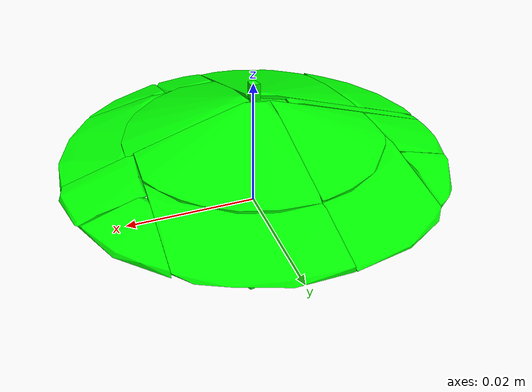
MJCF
<mujoco model="shapenetsem39">
  <asset>
    <mesh file="meshes/shapenetsem39/shapenetsem39_0.stl" name="shapenetsem39_0" scale="1 1 1"/>
    <mesh file="meshes/shapenetsem39/shapenetsem39_1.stl" name="shapenetsem39_1" scale="1 1 1"/>
    <mesh file="meshes/shapenetsem39/shapenetsem39_2.stl" name="shapenetsem39_2" scale="1 1 1"/>
    <mesh file="meshes/shapenetsem39/shapenetsem39_3.stl" name="shapenetsem39_3" scale="1 1 1"/>
    <mesh file="meshes/shapenetsem39/shapenetsem39_4.stl" name="shapenetsem39_4" scale="1 1 1"/>
    <mesh file="meshes/shapenetsem39/shapenetsem39_5.stl" name="shapenetsem39_5" scale="1 1 1"/>
    <mesh file="meshes/shapenetsem39/shapenetsem39_6.stl" name="shapenetsem39_6" scale="1 1 1"/>
    <mesh file="meshes/shapenetsem39/shapenetsem39_7.stl" name="shapenetsem39_7" scale="1 1 1"/>
    <mesh file="meshes/shapenetsem39/shapenetsem39_8.stl" name="shapenetsem39_8" scale="1 1 1"/>
    <mesh file="meshes/shapenetsem39/shapenetsem39_9.stl" name="shapenetsem39_9" scale="1 1 1"/>
    <mesh file="meshes/shapenetsem39/shapenetsem39_10.stl" name="shapenetsem39_10" scale="1 1 1"/>
    <mesh file="meshes/shapenetsem39/shapenetsem39_11.stl" name="shapenetsem39_11" scale="1 1 1"/>
    <mesh file="meshes/shapenetsem39/shapenetsem39_12.stl" name="shapenetsem39_12" scale="1 1 1"/>
    <mesh file="meshes/shapenetsem39/shapenetsem39_13.stl" name="shapenetsem39_13" scale="1 1 1"/>
    <mesh file="meshes/shapenetsem39/shapenetsem39_14.stl" name="shapenetsem39_14" scale="1 1 1"/>
    <mesh file="meshes/shapenetsem39/shapenetsem39_15.stl" name="shapenetsem39_15" scale="1 1 1"/>
    <mesh file="meshes/shapenetsem39/shapenetsem39_16.stl" name="shapenetsem39_16" scale="1 1 1"/>
    <mesh file="meshes/shapenetsem39/shapenetsem39_17.stl" name="shapenetsem39_17" scale="1 1 1"/>
    <mesh file="meshes/shapenetsem39/shapenetsem39_18.stl" name="shapenetsem39_18" scale="1 1 1"/>
  </asset>
  <worldbody>
    <body>
      <body name="collision">
        <geom pos="0 0 0" mesh="shapenetsem39_0" type="mesh" solimp="0.998 0.998 0.001" solref="0.001 1" density="100" friction="0.95 0.3 0.1" rgba="0 1 0 1" group="1" condim="4"/>
        <geom pos="0 0 0" mesh="shapenetsem39_1" type="mesh" solimp="0.998 0.998 0.001" solref="0.001 1" density="100" friction="0.95 0.3 0.1" rgba="0 1 0 1" group="1" condim="4"/>
        <geom pos="0 0 0" mesh="shapenetsem39_2" type="mesh" solimp="0.998 0.998 0.001" solref="0.001 1" density="100" friction="0.95 0.3 0.1" rgba="0 1 0 1" group="1" condim="4"/>
        <geom pos="0 0 0" mesh="shapenetsem39_3" type="mesh" solimp="0.998 0.998 0.001" solref="0.001 1" density="100" friction="0.95 0.3 0.1" rgba="0 1 0 1" group="1" condim="4"/>
        <geom pos="0 0 0" mesh="shapenetsem39_4" type="mesh" solimp="0.998 0.998 0.001" solref="0.001 1" density="100" friction="0.95 0.3 0.1" rgba="0 1 0 1" group="1" condim="4"/>
        <geom pos="0 0 0" mesh="shapenetsem39_5" type="mesh" solimp="0.998 0.998 0.001" solref="0.001 1" density="100" friction="0.95 0.3 0.1" rgba="0 1 0 1" group="1" condim="4"/>
        <geom pos="0 0 0" mesh="shapenetsem39_6" type="mesh" solimp="0.998 0.998 0.001" solref="0.001 1" density="100" friction="0.95 0.3 0.1" rgba="0 1 0 1" group="1" condim="4"/>
        <geom pos="0 0 0" mesh="shapenetsem39_7" type="mesh" solimp="0.998 0.998 0.001" solref="0.001 1" density="100" friction="0.95 0.3 0.1" rgba="0 1 0 1" group="1" condim="4"/>
        <geom pos="0 0 0" mesh="shapenetsem39_8" type="mesh" solimp="0.998 0.998 0.001" solref="0.001 1" density="100" friction="0.95 0.3 0.1" rgba="0 1 0 1" group="1" condim="4"/>
        <geom pos="0 0 0" mesh="shapenetsem39_9" type="mesh" solimp="0.998 0.998 0.001" solref="0.001 1" density="100" friction="0.95 0.3 0.1" rgba="0 1 0 1" group="1" condim="4"/>
        <geom pos="0 0 0" mesh="shapenetsem39_10" type="mesh" solimp="0.998 0.998 0.001" solref="0.001 1" density="100" friction="0.95 0.3 0.1" rgba="0 1 0 1" group="1" condim="4"/>
        <geom pos="0 0 0" mesh="shapenetsem39_11" type="mesh" solimp="0.998 0.998 0.001" solref="0.001 1" density="100" friction="0.95 0.3 0.1" rgba="0 1 0 1" group="1" condim="4"/>
        <geom pos="0 0 0" mesh="shapenetsem39_12" type="mesh" solimp="0.998 0.998 0.001" solref="0.001 1" density="100" friction="0.95 0.3 0.1" rgba="0 1 0 1" group="1" condim="4"/>
        <geom pos="0 0 0" mesh="shapenetsem39_13" type="mesh" solimp="0.998 0.998 0.001" solref="0.001 1" density="100" friction="0.95 0.3 0.1" rgba="0 1 0 1" group="1" condim="4"/>
        <geom pos="0 0 0" mesh="shapenetsem39_14" type="mesh" solimp="0.998 0.998 0.001" solref="0.001 1" density="100" friction="0.95 0.3 0.1" rgba="0 1 0 1" group="1" condim="4"/>
        <geom pos="0 0 0" mesh="shapenetsem39_15" type="mesh" solimp="0.998 0.998 0.001" solref="0.001 1" density="100" friction="0.95 0.3 0.1" rgba="0 1 0 1" group="1" condim="4"/>
        <geom pos="0 0 0" mesh="shapenetsem39_16" type="mesh" solimp="0.998 0.998 0.001" solref="0.001 1" density="100" friction="0.95 0.3 0.1" rgba="0 1 0 1" group="1" condim="4"/>
        <geom pos="0 0 0" mesh="shapenetsem39_17" type="mesh" solimp="0.998 0.998 0.001" solref="0.001 1" density="100" friction="0.95 0.3 0.1" rgba="0 1 0 1" group="1" condim="4"/>
        <geom pos="0 0 0" mesh="shapenetsem39_18" type="mesh" solimp="0.998 0.998 0.001" solref="0.001 1" density="100" friction="0.95 0.3 0.1" rgba="0 1 0 1" group="1" condim="4"/>
      </body>
      <body name="visual">
        <geom pos="0 0 0" mesh="shapenetsem39_0" type="mesh" rgba="0 1 0 1" conaffinity="0" contype="0" group="0" mass="0.0001"/>
        <geom pos="0 0 0" mesh="shapenetsem39_1" type="mesh" rgba="0 1 0 1" conaffinity="0" contype="0" group="0" mass="0.0001"/>
        <geom pos="0 0 0" mesh="shapenetsem39_2" type="mesh" rgba="0 1 0 1" conaffinity="0" contype="0" group="0" mass="0.0001"/>
        <geom pos="0 0 0" mesh="shapenetsem39_3" type="mesh" rgba="0 1 0 1" conaffinity="0" contype="0" group="0" mass="0.0001"/>
        <geom pos="0 0 0" mesh="shapenetsem39_4" type="mesh" rgba="0 1 0 1" conaffinity="0" contype="0" group="0" mass="0.0001"/>
        <geom pos="0 0 0" mesh="shapenetsem39_5" type="mesh" rgba="0 1 0 1" conaffinity="0" contype="0" group="0" mass="0.0001"/>
        <geom pos="0 0 0" mesh="shapenetsem39_6" type="mesh" rgba="0 1 0 1" conaffinity="0" contype="0" group="0" mass="0.0001"/>
        <geom pos="0 0 0" mesh="shapenetsem39_7" type="mesh" rgba="0 1 0 1" conaffinity="0" contype="0" group="0" mass="0.0001"/>
        <geom pos="0 0 0" mesh="shapenetsem39_8" type="mesh" rgba="0 1 0 1" conaffinity="0" contype="0" group="0" mass="0.0001"/>
        <geom pos="0 0 0" mesh="shapenetsem39_9" type="mesh" rgba="0 1 0 1" conaffinity="0" contype="0" group="0" mass="0.0001"/>
        <geom pos="0 0 0" mesh="shapenetsem39_10" type="mesh" rgba="0 1 0 1" conaffinity="0" contype="0" group="0" mass="0.0001"/>
        <geom pos="0 0 0" mesh="shapenetsem39_11" type="mesh" rgba="0 1 0 1" conaffinity="0" contype="0" group="0" mass="0.0001"/>
        <geom pos="0 0 0" mesh="shapenetsem39_12" type="mesh" rgba="0 1 0 1" conaffinity="0" contype="0" group="0" mass="0.0001"/>
        <geom pos="0 0 0" mesh="shapenetsem39_13" type="mesh" rgba="0 1 0 1" conaffinity="0" contype="0" group="0" mass="0.0001"/>
        <geom pos="0 0 0" mesh="shapenetsem39_14" type="mesh" rgba="0 1 0 1" conaffinity="0" contype="0" group="0" mass="0.0001"/>
        <geom pos="0 0 0" mesh="shapenetsem39_15" type="mesh" rgba="0 1 0 1" conaffinity="0" contype="0" group="0" mass="0.0001"/>
        <geom pos="0 0 0" mesh="shapenetsem39_16" type="mesh" rgba="0 1 0 1" conaffinity="0" contype="0" group="0" mass="0.0001"/>
        <geom pos="0 0 0" mesh="shapenetsem39_17" type="mesh" rgba="0 1 0 1" conaffinity="0" contype="0" group="0" mass="0.0001"/>
        <geom pos="0 0 0" mesh="shapenetsem39_18" type="mesh" rgba="0 1 0 1" conaffinity="0" contype="0" group="0" mass="0.0001"/>
      </body>
      <site rgba="0 0 0 0" size="0.005" pos="0 0 -0.06" name="bottom_site"/>
      <site rgba="0 0 0 0" size="0.005" pos="0 0 0.04" name="top_site"/>
      <site rgba="0 0 0 0" size="0.005" pos="0.025 0.025 0" name="horizontal_radius_site"/>
    </body>
  </worldbody>
</mujoco>
